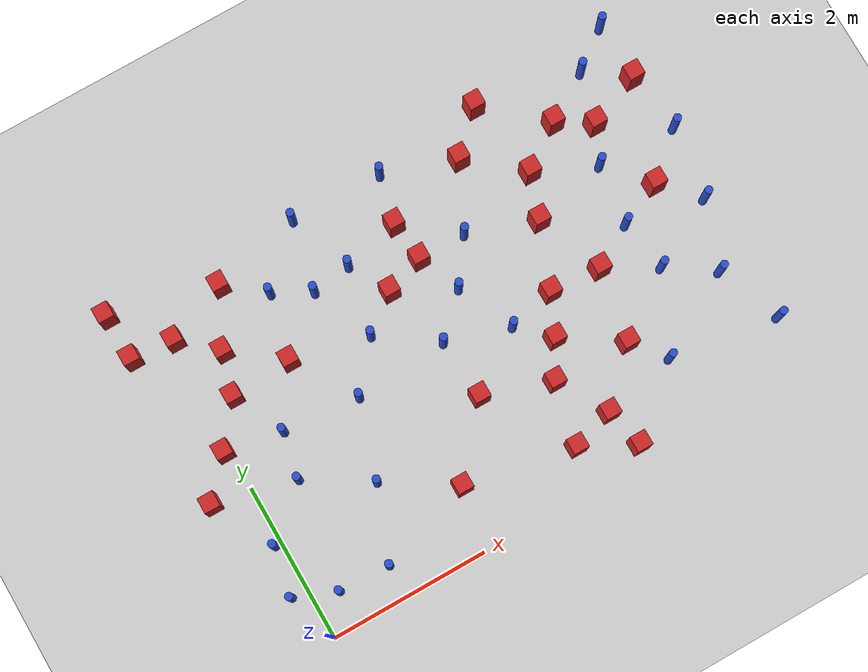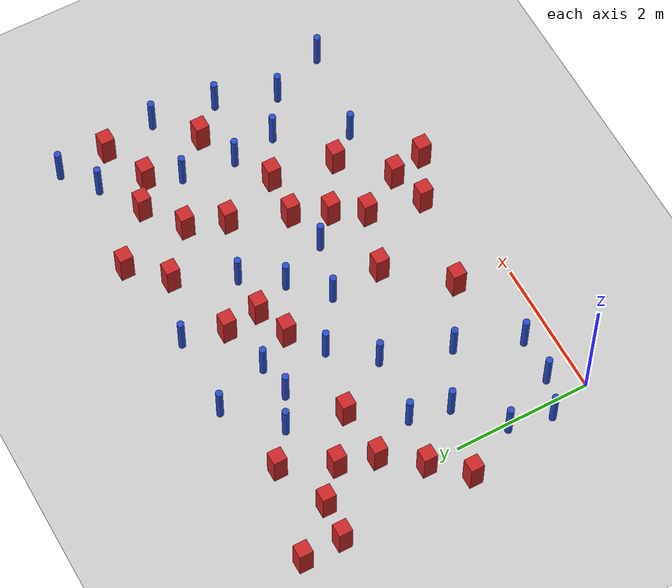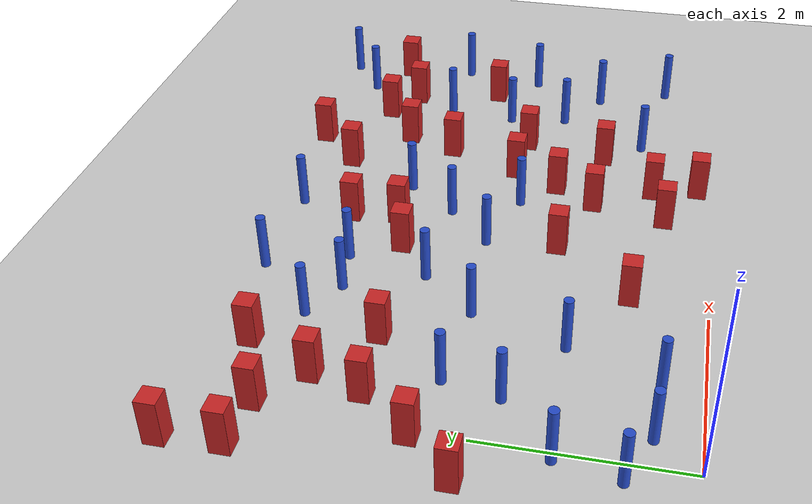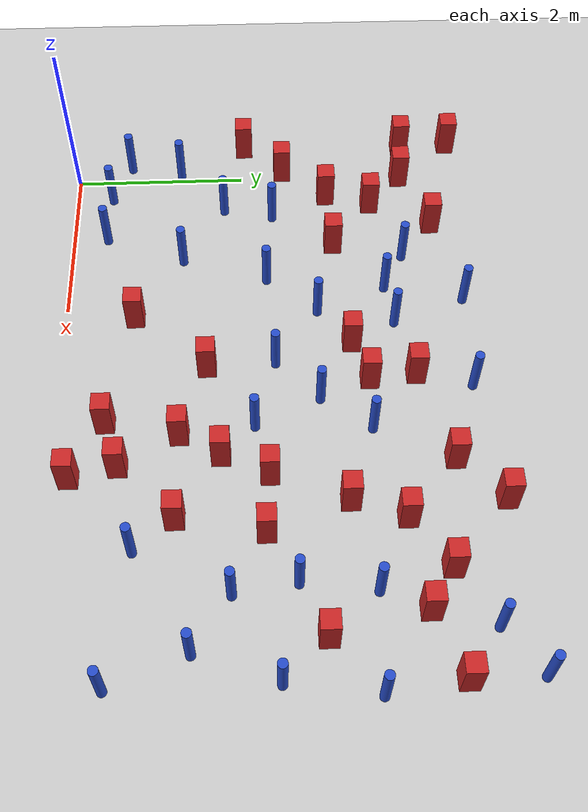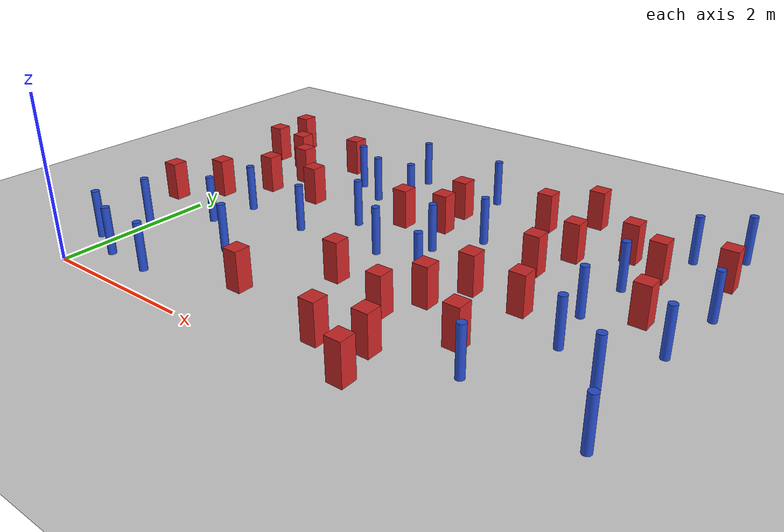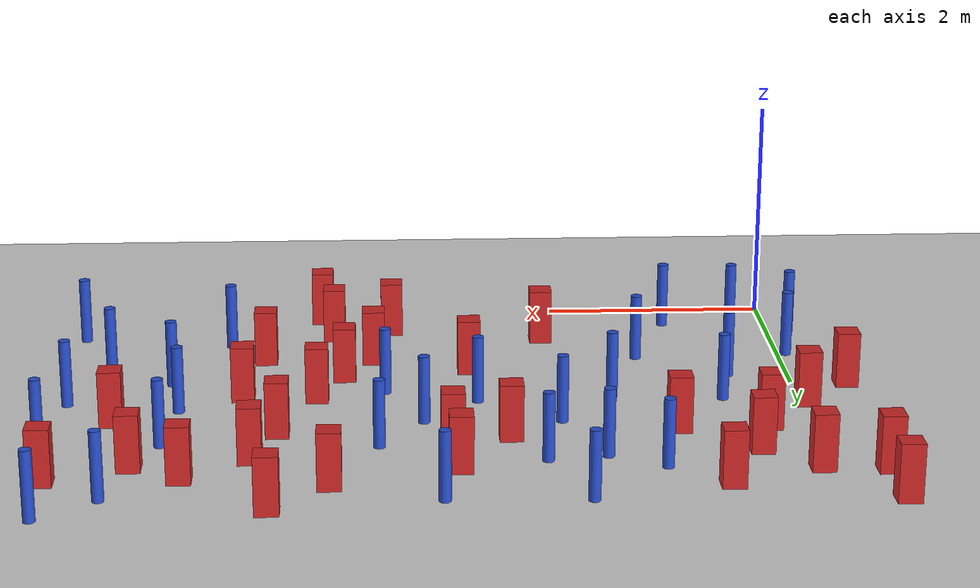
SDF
<sdf version="1.6">
 <world name="default">
  <model name="ground_plane">
   <static>1</static>
   <link name="link">
    <collision name="collision">
     <geometry><plane><normal>0 0 1</normal><size>100 100</size></plane></geometry>
     <surface><friction><ode><mu>100</mu><mu2>50</mu2></ode></friction></surface>
    </collision>
    <visual name="visual">
     <cast_shadows>0</cast_shadows>
     <geometry><plane><normal>0 0 1</normal><size>100 100</size></plane></geometry>
     <material>
      <ambient>1.0 1.0 1.0 1.0</ambient>
      <diffuse>0.8 0.8 0.8 1.0</diffuse>
      <specular>0.01 0.01 0.01 1.000000</specular>
     </material>
    </visual>
   </link>
  </model>
  <model name="pole_obstacle0">
   <static>true</static>
   <pose>3.59999986201 2.11532828441 7.38925637345e-09 -8.47170692798e-08 1.24976764939e-08 -1.74513093025e-07</pose>
   <link name="link">
    <pose>0 0 0.3 0 -0 0</pose>
    <inertial>
     <mass>1</mass>
     <inertia><ixx>0.145833</ixx><ixy>0</ixy><ixz>0</ixz><iyy>0.145833</iyy><iyz>0</iyz><izz>0.125</izz></inertia>
    </inertial>
    <collision name="collision">
     <geometry><cylinder><radius>0.05</radius><length>.6</length></cylinder></geometry>
    </collision>
    <visual name="visual">
     <geometry><cylinder><radius>0.05</radius><length>.6</length></cylinder></geometry>
     <material>
      <script><name>Gazebo/Blue</name><uri>file://media/materials/scripts/gazebo.material</uri></script>
     </material>
    </visual>
   </link>
  </model>
  <model name="pole_obstacle5">
   <static>true</static>
   <pose>1.31517857012 3.88095834125 7.38925637345e-09 -8.47170692799e-08 1.24976765053e-08 -1.74513093017e-07</pose>
   <link name="link">
    <pose>0 0 0.3 0 -0 0</pose>
    <inertial>
     <mass>1</mass>
     <inertia><ixx>0.145833</ixx><ixy>0</ixy><ixz>0</ixz><iyy>0.145833</iyy><iyz>0</iyz><izz>0.125</izz></inertia>
    </inertial>
    <collision name="collision">
     <geometry><cylinder><radius>0.05</radius><length>.6</length></cylinder></geometry>
    </collision>
    <visual name="visual">
     <geometry><cylinder><radius>0.05</radius><length>.6</length></cylinder></geometry>
     <material>
      <script><name>Gazebo/Blue</name><uri>file://media/materials/scripts/gazebo.material</uri></script>
     </material>
    </visual>
   </link>
  </model>
  <model name="pole_obstacle9">
   <static>true</static>
   <pose>1.97348872524 4.52484014197 7.38925637345e-09 -8.471706928e-08 1.24976765202e-08 -1.7451309301e-07</pose>
   <link name="link">
    <pose>0 0 0.3 0 -0 0</pose>
    <inertial>
     <mass>1</mass>
     <inertia><ixx>0.145833</ixx><ixy>0</ixy><ixz>0</ixz><iyy>0.145833</iyy><iyz>0</iyz><izz>0.125</izz></inertia>
    </inertial>
    <collision name="collision">
     <geometry><cylinder><radius>0.05</radius><length>.6</length></cylinder></geometry>
    </collision>
    <visual name="visual">
     <geometry><cylinder><radius>0.05</radius><length>.6</length></cylinder></geometry>
     <material>
      <script><name>Gazebo/Blue</name><uri>file://media/materials/scripts/gazebo.material</uri></script>
     </material>
    </visual>
   </link>
  </model>
  <model name="square_post_obstacle18">
   <static>true</static>
   <pose>2.15118313694 0.78848510376 1.91545236811e-07 -7.35059704564e-06 1.12565212e-07 2.39332434364e-05</pose>
   <link name="link">
    <pose>0 0 0.25 0 -0 0</pose>
    <inertial>
     <mass>100</mass>
     <inertia>
      <ixx>0.166667</ixx>
      <ixy>0</ixy>
      <ixz>0</ixz>
      <iyy>0.166667</iyy>
      <iyz>0</iyz>
      <izz>0.166667</izz>
     </inertia>
    </inertial>
    <collision name="collision"><geometry><box><size>.2 .2 .5</size></box></geometry></collision>
    <visual name="visual">
     <geometry><box><size>.2 .2 .5</size></box></geometry>
     <material>
      <script><name>Gazebo/Red</name><uri>file://media/materials/scripts/gazebo.material</uri></script>
     </material>
    </visual>
   </link>
  </model>
  <model name="pole_obstacle24">
   <static>true</static>
   <pose>2.27807471456 3.71019698925 7.38925637345e-09 -8.47170692798e-08 1.24976764939e-08 -1.74513093025e-07</pose>
   <link name="link">
    <pose>0 0 0.3 0 -0 0</pose>
    <inertial>
     <mass>1</mass>
     <inertia><ixx>0.145833</ixx><ixy>0</ixy><ixz>0</ixz><iyy>0.145833</iyy><iyz>0</iyz><izz>0.125</izz></inertia>
    </inertial>
    <collision name="collision">
     <geometry><cylinder><radius>0.05</radius><length>.6</length></cylinder></geometry>
    </collision>
    <visual name="visual">
     <geometry><cylinder><radius>0.05</radius><length>.6</length></cylinder></geometry>
     <material>
      <script><name>Gazebo/Blue</name><uri>file://media/materials/scripts/gazebo.material</uri></script>
     </material>
    </visual>
   </link>
  </model>
  <model name="square_post_obstacle20">
   <static>true</static>
   <pose>0.346388215493 3.02720264312 1.91545236811e-07 -7.35059704564e-06 1.12565212e-07 2.39332434364e-05</pose>
   <link name="link">
    <pose>0 0 0.25 0 -0 0</pose>
    <inertial>
     <mass>100</mass>
     <inertia>
      <ixx>0.166667</ixx>
      <ixy>0</ixy>
      <ixz>0</ixz>
      <iyy>0.166667</iyy>
      <iyz>0</iyz>
      <izz>0.166667</izz>
     </inertia>
    </inertial>
    <collision name="collision"><geometry><box><size>.2 .2 .5</size></box></geometry></collision>
    <visual name="visual">
     <geometry><box><size>.2 .2 .5</size></box></geometry>
     <material>
      <script><name>Gazebo/Red</name><uri>file://media/materials/scripts/gazebo.material</uri></script>
     </material>
    </visual>
   </link>
  </model>
  <model name="pole_obstacle30">
   <static>true</static>
   <pose>3.65956599848 3.36490128789 7.38925637345e-09 -8.47170692798e-08 1.24976764939e-08 -1.74513093025e-07</pose>
   <link name="link">
    <pose>0 0 0.3 0 -0 0</pose>
    <inertial>
     <mass>1</mass>
     <inertia><ixx>0.145833</ixx><ixy>0</ixy><ixz>0</ixz><iyy>0.145833</iyy><iyz>0</iyz><izz>0.125</izz></inertia>
    </inertial>
    <collision name="collision">
     <geometry><cylinder><radius>0.05</radius><length>.6</length></cylinder></geometry>
    </collision>
    <visual name="visual">
     <geometry><cylinder><radius>0.05</radius><length>.6</length></cylinder></geometry>
     <material>
      <script><name>Gazebo/Blue</name><uri>file://media/materials/scripts/gazebo.material</uri></script>
     </material>
    </visual>
   </link>
  </model>
  <model name="square_post_obstacle22">
   <static>true</static>
   <pose>4.71784901843 3.6338639334 1.91545236811e-07 -7.35059704564e-06 1.12565212e-07 2.39332434364e-05</pose>
   <link name="link">
    <pose>0 0 0.25 0 -0 0</pose>
    <inertial>
     <mass>100</mass>
     <inertia>
      <ixx>0.166667</ixx>
      <ixy>0</ixy>
      <ixz>0</ixz>
      <iyy>0.166667</iyy>
      <iyz>0</iyz>
      <izz>0.166667</izz>
     </inertia>
    </inertial>
    <collision name="collision"><geometry><box><size>.2 .2 .5</size></box></geometry></collision>
    <visual name="visual">
     <geometry><box><size>.2 .2 .5</size></box></geometry>
     <material>
      <script><name>Gazebo/Red</name><uri>file://media/materials/scripts/gazebo.material</uri></script>
     </material>
    </visual>
   </link>
  </model>
  <model name="pole_obstacle32">
   <static>true</static>
   <pose>2.79741233737 2.35532736677 7.38925637345e-09 -8.47170692798e-08 1.24976764939e-08 -1.74513093025e-07</pose>
   <link name="link">
    <pose>0 0 0.3 0 -0 0</pose>
    <inertial>
     <mass>1</mass>
     <inertia><ixx>0.145833</ixx><ixy>0</ixy><ixz>0</ixz><iyy>0.145833</iyy><iyz>0</iyz><izz>0.125</izz></inertia>
    </inertial>
    <collision name="collision">
     <geometry><cylinder><radius>0.05</radius><length>.6</length></cylinder></geometry>
    </collision>
    <visual name="visual">
     <geometry><cylinder><radius>0.05</radius><length>.6</length></cylinder></geometry>
     <material>
      <script><name>Gazebo/Blue</name><uri>file://media/materials/scripts/gazebo.material</uri></script>
     </material>
    </visual>
   </link>
  </model>
  <model name="square_post_obstacle28">
   <static>true</static>
   <pose>4.1805404886 0.185177053721 1.91545236811e-07 -7.35059704564e-06 1.12565212e-07 2.39332434364e-05</pose>
   <link name="link">
    <pose>0 0 0.25 0 -0 0</pose>
    <inertial>
     <mass>100</mass>
     <inertia>
      <ixx>0.166667</ixx>
      <ixy>0</ixy>
      <ixz>0</ixz>
      <iyy>0.166667</iyy>
      <iyz>0</iyz>
      <izz>0.166667</izz>
     </inertia>
    </inertial>
    <collision name="collision"><geometry><box><size>.2 .2 .5</size></box></geometry></collision>
    <visual name="visual">
     <geometry><box><size>.2 .2 .5</size></box></geometry>
     <material>
      <script><name>Gazebo/Red</name><uri>file://media/materials/scripts/gazebo.material</uri></script>
     </material>
    </visual>
   </link>
  </model>
  <model name="pole_obstacle33">
   <static>true</static>
   <pose>1.62228093729 2.28337743721 7.38925637345e-09 -8.47170692799e-08 1.24976765053e-08 -1.74513093017e-07</pose>
   <link name="link">
    <pose>0 0 0.3 0 -0 0</pose>
    <inertial>
     <mass>1</mass>
     <inertia><ixx>0.145833</ixx><ixy>0</ixy><ixz>0</ixz><iyy>0.145833</iyy><iyz>0</iyz><izz>0.125</izz></inertia>
    </inertial>
    <collision name="collision">
     <geometry><cylinder><radius>0.05</radius><length>.6</length></cylinder></geometry>
    </collision>
    <visual name="visual">
     <geometry><cylinder><radius>0.05</radius><length>.6</length></cylinder></geometry>
     <material>
      <script><name>Gazebo/Blue</name><uri>file://media/materials/scripts/gazebo.material</uri></script>
     </material>
    </visual>
   </link>
  </model>
  <model name="square_post_obstacle30">
   <static>true</static>
   <pose>2.84793238087 1.60094142056 1.91545236811e-07 -7.35059704564e-06 1.12565212e-07 2.39332434364e-05</pose>
   <link name="link">
    <pose>0 0 0.25 0 -0 0</pose>
    <inertial>
     <mass>100</mass>
     <inertia>
      <ixx>0.166667</ixx>
      <ixy>0</ixy>
      <ixz>0</ixz>
      <iyy>0.166667</iyy>
      <iyz>0</iyz>
      <izz>0.166667</izz>
     </inertia>
    </inertial>
    <collision name="collision"><geometry><box><size>.2 .2 .5</size></box></geometry></collision>
    <visual name="visual">
     <geometry><box><size>.2 .2 .5</size></box></geometry>
     <material>
      <script><name>Gazebo/Red</name><uri>file://media/materials/scripts/gazebo.material</uri></script>
     </material>
    </visual>
   </link>
  </model>
  <model name="pole_obstacle44">
   <static>true</static>
   <pose>0.961565885641 0.403878672148 7.38925637345e-09 -8.47170692799e-08 1.24976765042e-08 -1.74513093018e-07</pose>
   <link name="link">
    <pose>0 0 0.3 0 -0 0</pose>
    <inertial>
     <mass>1</mass>
     <inertia><ixx>0.145833</ixx><ixy>0</ixy><ixz>0</ixz><iyy>0.145833</iyy><iyz>0</iyz><izz>0.125</izz></inertia>
    </inertial>
    <collision name="collision">
     <geometry><cylinder><radius>0.05</radius><length>.6</length></cylinder></geometry>
    </collision>
    <visual name="visual">
     <geometry><cylinder><radius>0.05</radius><length>.6</length></cylinder></geometry>
     <material>
      <script><name>Gazebo/Blue</name><uri>file://media/materials/scripts/gazebo.material</uri></script>
     </material>
    </visual>
   </link>
  </model>
  <model name="square_post_obstacle37">
   <static>true</static>
   <pose>0.841346666904 4.26025237784 1.91545236811e-07 -7.35059704564e-06 1.12565212e-07 2.39332434364e-05</pose>
   <link name="link">
    <pose>0 0 0.25 0 -0 0</pose>
    <inertial>
     <mass>100</mass>
     <inertia>
      <ixx>0.166667</ixx>
      <ixy>0</ixy>
      <ixz>0</ixz>
      <iyy>0.166667</iyy>
      <iyz>0</iyz>
      <izz>0.166667</izz>
     </inertia>
    </inertial>
    <collision name="collision"><geometry><box><size>.2 .2 .5</size></box></geometry></collision>
    <visual name="visual">
     <geometry><box><size>.2 .2 .5</size></box></geometry>
     <material>
      <script><name>Gazebo/Red</name><uri>file://media/materials/scripts/gazebo.material</uri></script>
     </material>
    </visual>
   </link>
  </model>
  <model name="pole_obstacle49">
   <static>true</static>
   <pose>5.48275878531 1.85724465351 7.38925637345e-09 -8.471706928e-08 1.24976765134e-08 -1.74513093015e-07</pose>
   <link name="link">
    <pose>0 0 0.3 0 -0 0</pose>
    <inertial>
     <mass>1</mass>
     <inertia><ixx>0.145833</ixx><ixy>0</ixy><ixz>0</ixz><iyy>0.145833</iyy><iyz>0</iyz><izz>0.125</izz></inertia>
    </inertial>
    <collision name="collision">
     <geometry><cylinder><radius>0.05</radius><length>.6</length></cylinder></geometry>
    </collision>
    <visual name="visual">
     <geometry><cylinder><radius>0.05</radius><length>.6</length></cylinder></geometry>
     <material>
      <script><name>Gazebo/Blue</name><uri>file://media/materials/scripts/gazebo.material</uri></script>
     </material>
    </visual>
   </link>
  </model>
  <model name="pole_obstacle61">
   <static>true</static>
   <pose>6.49126966007 3.25140068982 7.38925637345e-09 -8.47170692798e-08 1.24976764937e-08 -1.74513093023e-07</pose>
   <link name="link">
    <pose>0 0 0.3 0 -0 0</pose>
    <inertial>
     <mass>1</mass>
     <inertia><ixx>0.145833</ixx><ixy>0</ixy><ixz>0</ixz><iyy>0.145833</iyy><iyz>0</iyz><izz>0.125</izz></inertia>
    </inertial>
    <collision name="collision">
     <geometry><cylinder><radius>0.05</radius><length>.6</length></cylinder></geometry>
    </collision>
    <visual name="visual">
     <geometry><cylinder><radius>0.05</radius><length>.6</length></cylinder></geometry>
     <material>
      <script><name>Gazebo/Blue</name><uri>file://media/materials/scripts/gazebo.material</uri></script>
     </material>
    </visual>
   </link>
  </model>
  <model name="pole_obstacle76">
   <static>true</static>
   <pose>0.656487274099 2.36993181887 7.38925637345e-09 -8.47170692799e-08 1.2497676509e-08 -1.74513093016e-07</pose>
   <link name="link">
    <pose>0 0 0.3 0 -0 0</pose>
    <inertial>
     <mass>1</mass>
     <inertia><ixx>0.145833</ixx><ixy>0</ixy><ixz>0</ixz><iyy>0.145833</iyy><iyz>0</iyz><izz>0.125</izz></inertia>
    </inertial>
    <collision name="collision">
     <geometry><cylinder><radius>0.05</radius><length>.6</length></cylinder></geometry>
    </collision>
    <visual name="visual">
     <geometry><cylinder><radius>0.05</radius><length>.6</length></cylinder></geometry>
     <material>
      <script><name>Gazebo/Blue</name><uri>file://media/materials/scripts/gazebo.material</uri></script>
     </material>
    </visual>
   </link>
  </model>
  <model name="pole_obstacle78">
   <static>true</static>
   <pose>6.05824664809 1.47036181266 7.38925637345e-09 -8.471706928e-08 1.24976765134e-08 -1.74513093015e-07</pose>
   <link name="link">
    <pose>0 0 0.3 0 -0 0</pose>
    <inertial>
     <mass>1</mass>
     <inertia><ixx>0.145833</ixx><ixy>0</ixy><ixz>0</ixz><iyy>0.145833</iyy><iyz>0</iyz><izz>0.125</izz></inertia>
    </inertial>
    <collision name="collision">
     <geometry><cylinder><radius>0.05</radius><length>.6</length></cylinder></geometry>
    </collision>
    <visual name="visual">
     <geometry><cylinder><radius>0.05</radius><length>.6</length></cylinder></geometry>
     <material>
      <script><name>Gazebo/Blue</name><uri>file://media/materials/scripts/gazebo.material</uri></script>
     </material>
    </visual>
   </link>
  </model>
  <model name="square_post_obstacle67">
   <static>true</static>
   <pose>3.53122868959 0.52642705448 1.91545236811e-07 -7.35059704564e-06 1.12565212e-07 2.39332434364e-05</pose>
   <link name="link">
    <pose>0 0 0.25 0 -0 0</pose>
    <inertial>
     <mass>100</mass>
     <inertia>
      <ixx>0.166667</ixx>
      <ixy>0</ixy>
      <ixz>0</ixz>
      <iyy>0.166667</iyy>
      <iyz>0</iyz>
      <izz>0.166667</izz>
     </inertia>
    </inertial>
    <collision name="collision"><geometry><box><size>.2 .2 .5</size></box></geometry></collision>
    <visual name="visual">
     <geometry><box><size>.2 .2 .5</size></box></geometry>
     <material>
      <script><name>Gazebo/Red</name><uri>file://media/materials/scripts/gazebo.material</uri></script>
     </material>
    </visual>
   </link>
  </model>
  <model name="square_post_obstacle72">
   <static>true</static>
   <pose>3.04826873284 3.37366417889 1.91545236811e-07 -7.35059704564e-06 1.12565212e-07 2.39332434364e-05</pose>
   <link name="link">
    <pose>0 0 0.25 0 -0 0</pose>
    <inertial>
     <mass>100</mass>
     <inertia>
      <ixx>0.166667</ixx>
      <ixy>0</ixy>
      <ixz>0</ixz>
      <iyy>0.166667</iyy>
      <iyz>0</iyz>
      <izz>0.166667</izz>
     </inertia>
    </inertial>
    <collision name="collision"><geometry><box><size>.2 .2 .5</size></box></geometry></collision>
    <visual name="visual">
     <geometry><box><size>.2 .2 .5</size></box></geometry>
     <material>
      <script><name>Gazebo/Red</name><uri>file://media/materials/scripts/gazebo.material</uri></script>
     </material>
    </visual>
   </link>
  </model>
  <model name="pole_obstacle85">
   <static>true</static>
   <pose>5.48218793761 3.28763165612 7.38925637345e-09 -8.47170692798e-08 1.24976764937e-08 -1.74513093023e-07</pose>
   <link name="link">
    <pose>0 0 0.3 0 -0 0</pose>
    <inertial>
     <mass>1</mass>
     <inertia><ixx>0.145833</ixx><ixy>0</ixy><ixz>0</ixz><iyy>0.145833</iyy><iyz>0</iyz><izz>0.125</izz></inertia>
    </inertial>
    <collision name="collision">
     <geometry><cylinder><radius>0.05</radius><length>.6</length></cylinder></geometry>
    </collision>
    <visual name="visual">
     <geometry><cylinder><radius>0.05</radius><length>.6</length></cylinder></geometry>
     <material>
      <script><name>Gazebo/Blue</name><uri>file://media/materials/scripts/gazebo.material</uri></script>
     </material>
    </visual>
   </link>
  </model>
  <model name="pole_obstacle90">
   <static>true</static>
   <pose>5.38153553141 2.51307991077 7.38925637345e-09 -8.47170692798e-08 1.24976764937e-08 -1.74513093023e-07</pose>
   <link name="link">
    <pose>0 0 0.3 0 -0 0</pose>
    <inertial>
     <mass>1</mass>
     <inertia><ixx>0.145833</ixx><ixy>0</ixy><ixz>0</ixz><iyy>0.145833</iyy><iyz>0</iyz><izz>0.125</izz></inertia>
    </inertial>
    <collision name="collision">
     <geometry><cylinder><radius>0.05</radius><length>.6</length></cylinder></geometry>
    </collision>
    <visual name="visual">
     <geometry><cylinder><radius>0.05</radius><length>.6</length></cylinder></geometry>
     <material>
      <script><name>Gazebo/Blue</name><uri>file://media/materials/scripts/gazebo.material</uri></script>
     </material>
    </visual>
   </link>
  </model>
  <model name="square_post_obstacle82">
   <static>true</static>
   <pose>5.26537857415 4.02279214426 1.91545236811e-07 -7.35059704564e-06 1.12565212e-07 2.39332434364e-05</pose>
   <link name="link">
    <pose>0 0 0.25 0 -0 0</pose>
    <inertial>
     <mass>100</mass>
     <inertia>
      <ixx>0.166667</ixx>
      <ixy>0</ixy>
      <ixz>0</ixz>
      <iyy>0.166667</iyy>
      <iyz>0</iyz>
      <izz>0.166667</izz>
     </inertia>
    </inertial>
    <collision name="collision"><geometry><box><size>.2 .2 .5</size></box></geometry></collision>
    <visual name="visual">
     <geometry><box><size>.2 .2 .5</size></box></geometry>
     <material>
      <script><name>Gazebo/Red</name><uri>file://media/materials/scripts/gazebo.material</uri></script>
     </material>
    </visual>
   </link>
  </model>
  <model name="pole_obstacle92">
   <static>true</static>
   <pose>2.09827740539 2.84926225565 7.38925637345e-09 -8.47170692798e-08 1.24976764939e-08 -1.74513093025e-07</pose>
   <link name="link">
    <pose>0 0 0.3 0 -0 0</pose>
    <inertial>
     <mass>1</mass>
     <inertia><ixx>0.145833</ixx><ixy>0</ixy><ixz>0</ixz><iyy>0.145833</iyy><iyz>0</iyz><izz>0.125</izz></inertia>
    </inertial>
    <collision name="collision">
     <geometry><cylinder><radius>0.05</radius><length>.6</length></cylinder></geometry>
    </collision>
    <visual name="visual">
     <geometry><cylinder><radius>0.05</radius><length>.6</length></cylinder></geometry>
     <material>
      <script><name>Gazebo/Blue</name><uri>file://media/materials/scripts/gazebo.material</uri></script>
     </material>
    </visual>
   </link>
  </model>
  <model name="square_post_obstacle88">
   <static>true</static>
   <pose>1.12422841568 3.07450086924 1.91545236811e-07 -7.35059704564e-06 1.12565212e-07 2.39332434364e-05</pose>
   <link name="link">
    <pose>0 0 0.25 0 -0 0</pose>
    <inertial>
     <mass>100</mass>
     <inertia>
      <ixx>0.166667</ixx>
      <ixy>0</ixy>
      <ixz>0</ixz>
      <iyy>0.166667</iyy>
      <iyz>0</iyz>
      <izz>0.166667</izz>
     </inertia>
    </inertial>
    <collision name="collision"><geometry><box><size>.2 .2 .5</size></box></geometry></collision>
    <visual name="visual">
     <geometry><box><size>.2 .2 .5</size></box></geometry>
     <material>
      <script><name>Gazebo/Red</name><uri>file://media/materials/scripts/gazebo.material</uri></script>
     </material>
    </visual>
   </link>
  </model>
  <model name="pole_obstacle96">
   <static>true</static>
   <pose>0.53340064516 1.79403683901 7.38925637345e-09 -8.47170692798e-08 1.24976764963e-08 -1.74513093022e-07</pose>
   <link name="link">
    <pose>0 0 0.3 0 -0 0</pose>
    <inertial>
     <mass>1</mass>
     <inertia><ixx>0.145833</ixx><ixy>0</ixy><ixz>0</ixz><iyy>0.145833</iyy><iyz>0</iyz><izz>0.125</izz></inertia>
    </inertial>
    <collision name="collision">
     <geometry><cylinder><radius>0.05</radius><length>.6</length></cylinder></geometry>
    </collision>
    <visual name="visual">
     <geometry><cylinder><radius>0.05</radius><length>.6</length></cylinder></geometry>
     <material>
      <script><name>Gazebo/Blue</name><uri>file://media/materials/scripts/gazebo.material</uri></script>
     </material>
    </visual>
   </link>
  </model>
  <model name="square_post_obstacle89">
   <static>true</static>
   <pose>4.53890463299 4.66056689381 1.91545236811e-07 -7.35059704564e-06 1.12565212e-07 2.39332434364e-05</pose>
   <link name="link">
    <pose>0 0 0.25 0 -0 0</pose>
    <inertial>
     <mass>100</mass>
     <inertia>
      <ixx>0.166667</ixx>
      <ixy>0</ixy>
      <ixz>0</ixz>
      <iyy>0.166667</iyy>
      <iyz>0</iyz>
      <izz>0.166667</izz>
     </inertia>
    </inertial>
    <collision name="collision"><geometry><box><size>.2 .2 .5</size></box></geometry></collision>
    <visual name="visual">
     <geometry><box><size>.2 .2 .5</size></box></geometry>
     <material>
      <script><name>Gazebo/Red</name><uri>file://media/materials/scripts/gazebo.material</uri></script>
     </material>
    </visual>
   </link>
  </model>
  <model name="pole_obstacle103">
   <static>true</static>
   <pose>0.318253601087 0.432526465357 7.38925637345e-09 -8.471706928e-08 1.24976765138e-08 -1.74513093013e-07</pose>
   <link name="link">
    <pose>0 0 0.3 0 -0 0</pose>
    <inertial>
     <mass>1</mass>
     <inertia><ixx>0.145833</ixx><ixy>0</ixy><ixz>0</ixz><iyy>0.145833</iyy><iyz>0</iyz><izz>0.125</izz></inertia>
    </inertial>
    <collision name="collision">
     <geometry><cylinder><radius>0.05</radius><length>.6</length></cylinder></geometry>
    </collision>
    <visual name="visual">
     <geometry><cylinder><radius>0.05</radius><length>.6</length></cylinder></geometry>
     <material>
      <script><name>Gazebo/Blue</name><uri>file://media/materials/scripts/gazebo.material</uri></script>
     </material>
    </visual>
   </link>
  </model>
  <model name="square_post_obstacle99">
   <static>true</static>
   <pose>6.36875139085 4.03530906781 1.91545236811e-07 -7.35059704564e-06 1.12565212e-07 2.39332434364e-05</pose>
   <link name="link">
    <pose>0 0 0.25 0 -0 0</pose>
    <inertial>
     <mass>100</mass>
     <inertia>
      <ixx>0.166667</ixx>
      <ixy>0</ixy>
      <ixz>0</ixz>
      <iyy>0.166667</iyy>
      <iyz>0</iyz>
      <izz>0.166667</izz>
     </inertia>
    </inertial>
    <collision name="collision"><geometry><box><size>.2 .2 .5</size></box></geometry></collision>
    <visual name="visual">
     <geometry><box><size>.2 .2 .5</size></box></geometry>
     <material>
      <script><name>Gazebo/Red</name><uri>file://media/materials/scripts/gazebo.material</uri></script>
     </material>
    </visual>
   </link>
  </model>
  <model name="square_post_obstacle111">
   <static>true</static>
   <pose>4.67502008794 1.2914887885 1.91545236811e-07 -7.35059704564e-06 1.12565212e-07 2.39332434364e-05</pose>
   <link name="link">
    <pose>0 0 0.25 0 -0 0</pose>
    <inertial>
     <mass>100</mass>
     <inertia>
      <ixx>0.166667</ixx>
      <ixy>0</ixy>
      <ixz>0</ixz>
      <iyy>0.166667</iyy>
      <iyz>0</iyz>
      <izz>0.166667</izz>
     </inertia>
    </inertial>
    <collision name="collision"><geometry><box><size>.2 .2 .5</size></box></geometry></collision>
    <visual name="visual">
     <geometry><box><size>.2 .2 .5</size></box></geometry>
     <material>
      <script><name>Gazebo/Red</name><uri>file://media/materials/scripts/gazebo.material</uri></script>
     </material>
    </visual>
   </link>
  </model>
  <model name="square_post_obstacle112">
   <static>true</static>
   <pose>5.9299140647 2.77203124467 1.91545236811e-07 -7.35059704564e-06 1.12565212e-07 2.39332434364e-05</pose>
   <link name="link">
    <pose>0 0 0.25 0 -0 0</pose>
    <inertial>
     <mass>100</mass>
     <inertia>
      <ixx>0.166667</ixx>
      <ixy>0</ixy>
      <ixz>0</ixz>
      <iyy>0.166667</iyy>
      <iyz>0</iyz>
      <izz>0.166667</izz>
     </inertia>
    </inertial>
    <collision name="collision"><geometry><box><size>.2 .2 .5</size></box></geometry></collision>
    <visual name="visual">
     <geometry><box><size>.2 .2 .5</size></box></geometry>
     <material>
      <script><name>Gazebo/Red</name><uri>file://media/materials/scripts/gazebo.material</uri></script>
     </material>
    </visual>
   </link>
  </model>
  <model name="square_post_obstacle113">
   <static>true</static>
   <pose>4.06424156252 0.684452052929 1.91545236811e-07 -7.35059704564e-06 1.12565212e-07 2.39332434364e-05</pose>
   <link name="link">
    <pose>0 0 0.25 0 -0 0</pose>
    <inertial>
     <mass>100</mass>
     <inertia>
      <ixx>0.166667</ixx>
      <ixy>0</ixy>
      <ixz>0</ixz>
      <iyy>0.166667</iyy>
      <iyz>0</iyz>
      <izz>0.166667</izz>
     </inertia>
    </inertial>
    <collision name="collision"><geometry><box><size>.2 .2 .5</size></box></geometry></collision>
    <visual name="visual">
     <geometry><box><size>.2 .2 .5</size></box></geometry>
     <material>
      <script><name>Gazebo/Red</name><uri>file://media/materials/scripts/gazebo.material</uri></script>
     </material>
    </visual>
   </link>
  </model>
  <model name="pole_obstacle119">
   <static>true</static>
   <pose>-0.0809111819096 1.26084774077 7.38925637345e-09 -8.47170692799e-08 1.24976765008e-08 -1.7451309302e-07</pose>
   <link name="link">
    <pose>0 0 0.3 0 -0 0</pose>
    <inertial>
     <mass>1</mass>
     <inertia><ixx>0.145833</ixx><ixy>0</ixy><ixz>0</ixz><iyy>0.145833</iyy><iyz>0</iyz><izz>0.125</izz></inertia>
    </inertial>
    <collision name="collision">
     <geometry><cylinder><radius>0.05</radius><length>.6</length></cylinder></geometry>
    </collision>
    <visual name="visual">
     <geometry><cylinder><radius>0.05</radius><length>.6</length></cylinder></geometry>
     <material>
      <script><name>Gazebo/Blue</name><uri>file://media/materials/scripts/gazebo.material</uri></script>
     </material>
    </visual>
   </link>
  </model>
  <model name="square_post_obstacle124">
   <static>true</static>
   <pose>-0.49170925498 4.59505623749 1.91545236811e-07 -7.35059704564e-06 1.12565212e-07 2.39332434364e-05</pose>
   <link name="link">
    <pose>0 0 0.25 0 -0 0</pose>
    <inertial>
     <mass>100</mass>
     <inertia>
      <ixx>0.166667</ixx>
      <ixy>0</ixy>
      <ixz>0</ixz>
      <iyy>0.166667</iyy>
      <iyz>0</iyz>
      <izz>0.166667</izz>
     </inertia>
    </inertial>
    <collision name="collision"><geometry><box><size>.2 .2 .5</size></box></geometry></collision>
    <visual name="visual">
     <geometry><box><size>.2 .2 .5</size></box></geometry>
     <material>
      <script><name>Gazebo/Red</name><uri>file://media/materials/scripts/gazebo.material</uri></script>
     </material>
    </visual>
   </link>
  </model>
  <model name="pole_obstacle130">
   <static>true</static>
   <pose>6.35917317634 4.76646849909 7.38925637345e-09 -8.47170692796e-08 1.24976764786e-08 -1.74513093032e-07</pose>
   <link name="link">
    <pose>0 0 0.3 0 -0 0</pose>
    <inertial>
     <mass>1</mass>
     <inertia><ixx>0.145833</ixx><ixy>0</ixy><ixz>0</ixz><iyy>0.145833</iyy><iyz>0</iyz><izz>0.125</izz></inertia>
    </inertial>
    <collision name="collision">
     <geometry><cylinder><radius>0.05</radius><length>.6</length></cylinder></geometry>
    </collision>
    <visual name="visual">
     <geometry><cylinder><radius>0.05</radius><length>.6</length></cylinder></geometry>
     <material>
      <script><name>Gazebo/Blue</name><uri>file://media/materials/scripts/gazebo.material</uri></script>
     </material>
    </visual>
   </link>
  </model>
  <model name="square_post_obstacle131">
   <static>true</static>
   <pose>-0.482946054506 2.04429324936 1.91545236811e-07 -7.35059704564e-06 1.12565212e-07 2.39332434364e-05</pose>
   <link name="link">
    <pose>0 0 0.25 0 -0 0</pose>
    <inertial>
     <mass>100</mass>
     <inertia>
      <ixx>0.166667</ixx>
      <ixy>0</ixy>
      <ixz>0</ixz>
      <iyy>0.166667</iyy>
      <iyz>0</iyz>
      <izz>0.166667</izz>
     </inertia>
    </inertial>
    <collision name="collision"><geometry><box><size>.2 .2 .5</size></box></geometry></collision>
    <visual name="visual">
     <geometry><box><size>.2 .2 .5</size></box></geometry>
     <material>
      <script><name>Gazebo/Red</name><uri>file://media/materials/scripts/gazebo.material</uri></script>
     </material>
    </visual>
   </link>
  </model>
  <model name="square_post_obstacle135">
   <static>true</static>
   <pose>4.19611704474 2.26062491517 1.91545236811e-07 -7.35059704564e-06 1.12565212e-07 2.39332434364e-05</pose>
   <link name="link">
    <pose>0 0 0.25 0 -0 0</pose>
    <inertial>
     <mass>100</mass>
     <inertia>
      <ixx>0.166667</ixx>
      <ixy>0</ixy>
      <ixz>0</ixz>
      <iyy>0.166667</iyy>
      <iyz>0</iyz>
      <izz>0.166667</izz>
     </inertia>
    </inertial>
    <collision name="collision"><geometry><box><size>.2 .2 .5</size></box></geometry></collision>
    <visual name="visual">
     <geometry><box><size>.2 .2 .5</size></box></geometry>
     <material>
      <script><name>Gazebo/Red</name><uri>file://media/materials/scripts/gazebo.material</uri></script>
     </material>
    </visual>
   </link>
  </model>
  <model name="square_post_obstacle138">
   <static>true</static>
   <pose>-0.472756069828 4.00516166778 1.91545236811e-07 -7.35059704564e-06 1.12565212e-07 2.39332434364e-05</pose>
   <link name="link">
    <pose>0 0 0.25 0 -0 0</pose>
    <inertial>
     <mass>100</mass>
     <inertia>
      <ixx>0.166667</ixx>
      <ixy>0</ixy>
      <ixz>0</ixz>
      <iyy>0.166667</iyy>
      <iyz>0</iyz>
      <izz>0.166667</izz>
     </inertia>
    </inertial>
    <collision name="collision"><geometry><box><size>.2 .2 .5</size></box></geometry></collision>
    <visual name="visual">
     <geometry><box><size>.2 .2 .5</size></box></geometry>
     <material>
      <script><name>Gazebo/Red</name><uri>file://media/materials/scripts/gazebo.material</uri></script>
     </material>
    </visual>
   </link>
  </model>
  <model name="square_post_obstacle145">
   <static>true</static>
   <pose>0.498264867244 3.55453353557 1.91545236811e-07 -7.35059704564e-06 1.12565212e-07 2.39332434364e-05</pose>
   <link name="link">
    <pose>0 0 0.25 0 -0 0</pose>
    <inertial>
     <mass>100</mass>
     <inertia>
      <ixx>0.166667</ixx>
      <ixy>0</ixy>
      <ixz>0</ixz>
      <iyy>0.166667</iyy>
      <iyz>0</iyz>
      <izz>0.166667</izz>
     </inertia>
    </inertial>
    <collision name="collision"><geometry><box><size>.2 .2 .5</size></box></geometry></collision>
    <visual name="visual">
     <geometry><box><size>.2 .2 .5</size></box></geometry>
     <material>
      <script><name>Gazebo/Red</name><uri>file://media/materials/scripts/gazebo.material</uri></script>
     </material>
    </visual>
   </link>
  </model>
  <model name="square_post_obstacle148">
   <static>true</static>
   <pose>2.55478781761 3.206715737 1.91545236811e-07 -7.35059704564e-06 1.12565212e-07 2.39332434364e-05</pose>
   <link name="link">
    <pose>0 0 0.25 0 -0 0</pose>
    <inertial>
     <mass>100</mass>
     <inertia>
      <ixx>0.166667</ixx>
      <ixy>0</ixy>
      <ixz>0</ixz>
      <iyy>0.166667</iyy>
      <iyz>0</iyz>
      <izz>0.166667</izz>
     </inertia>
    </inertial>
    <collision name="collision"><geometry><box><size>.2 .2 .5</size></box></geometry></collision>
    <visual name="visual">
     <geometry><box><size>.2 .2 .5</size></box></geometry>
     <material>
      <script><name>Gazebo/Red</name><uri>file://media/materials/scripts/gazebo.material</uri></script>
     </material>
    </visual>
   </link>
  </model>
  <model name="square_post_obstacle151">
   <static>true</static>
   <pose>4.06101400767 4.190572614 1.91545236811e-07 -7.35059704564e-06 1.12565212e-07 2.39332434364e-05</pose>
   <link name="link">
    <pose>0 0 0.25 0 -0 0</pose>
    <inertial>
     <mass>100</mass>
     <inertia>
      <ixx>0.166667</ixx>
      <ixy>0</ixy>
      <ixz>0</ixz>
      <iyy>0.166667</iyy>
      <iyz>0</iyz>
      <izz>0.166667</izz>
     </inertia>
    </inertial>
    <collision name="collision"><geometry><box><size>.2 .2 .5</size></box></geometry></collision>
    <visual name="visual">
     <geometry><box><size>.2 .2 .5</size></box></geometry>
     <material>
      <script><name>Gazebo/Red</name><uri>file://media/materials/scripts/gazebo.material</uri></script>
     </material>
    </visual>
   </link>
  </model>
  <model name="square_post_obstacle161">
   <static>true</static>
   <pose>0.0657970432189 3.9509866889 1.91545236811e-07 -7.35059704564e-06 1.12565212e-07 2.39332434364e-05</pose>
   <link name="link">
    <pose>0 0 0.25 0 -0 0</pose>
    <inertial>
     <mass>100</mass>
     <inertia>
      <ixx>0.166667</ixx>
      <ixy>0</ixy>
      <ixz>0</ixz>
      <iyy>0.166667</iyy>
      <iyz>0</iyz>
      <izz>0.166667</izz>
     </inertia>
    </inertial>
    <collision name="collision"><geometry><box><size>.2 .2 .5</size></box></geometry></collision>
    <visual name="visual">
     <geometry><box><size>.2 .2 .5</size></box></geometry>
     <material>
      <script><name>Gazebo/Red</name><uri>file://media/materials/scripts/gazebo.material</uri></script>
     </material>
    </visual>
   </link>
  </model>
  <model name="square_post_obstacle164">
   <static>true</static>
   <pose>-0.0628480656485 2.50838283888 1.91545236811e-07 -7.35059704564e-06 1.12565212e-07 2.39332434364e-05</pose>
   <link name="link">
    <pose>0 0 0.25 0 -0 0</pose>
    <inertial>
     <mass>100</mass>
     <inertia>
      <ixx>0.166667</ixx>
      <ixy>0</ixy>
      <ixz>0</ixz>
      <iyy>0.166667</iyy>
      <iyz>0</iyz>
      <izz>0.166667</izz>
     </inertia>
    </inertial>
    <collision name="collision"><geometry><box><size>.2 .2 .5</size></box></geometry></collision>
    <visual name="visual">
     <geometry><box><size>.2 .2 .5</size></box></geometry>
     <material>
      <script><name>Gazebo/Red</name><uri>file://media/materials/scripts/gazebo.material</uri></script>
     </material>
    </visual>
   </link>
  </model>
  <model name="square_post_obstacle171">
   <static>true</static>
   <pose>4.84104057472 2.21325352771 1.91545236811e-07 -7.35059704564e-06 1.12565212e-07 2.39332434364e-05</pose>
   <link name="link">
    <pose>0 0 0.25 0 -0 0</pose>
    <inertial>
     <mass>100</mass>
     <inertia>
      <ixx>0.166667</ixx>
      <ixy>0</ixy>
      <ixz>0</ixz>
      <iyy>0.166667</iyy>
      <iyz>0</iyz>
      <izz>0.166667</izz>
     </inertia>
    </inertial>
    <collision name="collision"><geometry><box><size>.2 .2 .5</size></box></geometry></collision>
    <visual name="visual">
     <geometry><box><size>.2 .2 .5</size></box></geometry>
     <material>
      <script><name>Gazebo/Red</name><uri>file://media/materials/scripts/gazebo.material</uri></script>
     </material>
    </visual>
   </link>
  </model>
  <model name="square_post_obstacle172">
   <static>true</static>
   <pose>4.51428533067 3.07023292223 1.91545236811e-07 -7.35059704564e-06 1.12565212e-07 2.39332434364e-05</pose>
   <link name="link">
    <pose>0 0 0.25 0 -0 0</pose>
    <inertial>
     <mass>100</mass>
     <inertia>
      <ixx>0.166667</ixx>
      <ixy>0</ixy>
      <ixz>0</ixz>
      <iyy>0.166667</iyy>
      <iyz>0</iyz>
      <izz>0.166667</izz>
     </inertia>
    </inertial>
    <collision name="collision"><geometry><box><size>.2 .2 .5</size></box></geometry></collision>
    <visual name="visual">
     <geometry><box><size>.2 .2 .5</size></box></geometry>
     <material>
      <script><name>Gazebo/Red</name><uri>file://media/materials/scripts/gazebo.material</uri></script>
     </material>
    </visual>
   </link>
  </model>
  <model name="pole_obstacle176">
   <static>true</static>
   <pose>1.3123582279 1.31242381879 7.38925637345e-09 -8.471706928e-08 1.24976765079e-08 -1.74513093017e-07</pose>
   <link name="link">
    <pose>0 0 0.3 0 -0 0</pose>
    <inertial>
     <mass>1</mass>
     <inertia><ixx>0.145833</ixx><ixy>0</ixy><ixz>0</ixz><iyy>0.145833</iyy><iyz>0</iyz><izz>0.125</izz></inertia>
    </inertial>
    <collision name="collision">
     <geometry><cylinder><radius>0.05</radius><length>.6</length></cylinder></geometry>
    </collision>
    <visual name="visual">
     <geometry><cylinder><radius>0.05</radius><length>.6</length></cylinder></geometry>
     <material>
      <script><name>Gazebo/Blue</name><uri>file://media/materials/scripts/gazebo.material</uri></script>
     </material>
    </visual>
   </link>
  </model>
  <model name="square_post_obstacle174">
   <static>true</static>
   <pose>3.70146272227 1.31571319295 1.91545236811e-07 -7.35059704564e-06 1.12565212e-07 2.39332434364e-05</pose>
   <link name="link">
    <pose>0 0 0.25 0 -0 0</pose>
    <inertial>
     <mass>100</mass>
     <inertia>
      <ixx>0.166667</ixx>
      <ixy>0</ixy>
      <ixz>0</ixz>
      <iyy>0.166667</iyy>
      <iyz>0</iyz>
      <izz>0.166667</izz>
     </inertia>
    </inertial>
    <collision name="collision"><geometry><box><size>.2 .2 .5</size></box></geometry></collision>
    <visual name="visual">
     <geometry><box><size>.2 .2 .5</size></box></geometry>
     <material>
      <script><name>Gazebo/Red</name><uri>file://media/materials/scripts/gazebo.material</uri></script>
     </material>
    </visual>
   </link>
  </model>
  <model name="pole_obstacle180">
   <static>true</static>
   <pose>6.35975838887 2.32143610529 7.38925637345e-09 -8.47170692798e-08 1.24976764937e-08 -1.74513093023e-07</pose>
   <link name="link">
    <pose>0 0 0.3 0 -0 0</pose>
    <inertial>
     <mass>1</mass>
     <inertia><ixx>0.145833</ixx><ixy>0</ixy><ixz>0</ixz><iyy>0.145833</iyy><iyz>0</iyz><izz>0.125</izz></inertia>
    </inertial>
    <collision name="collision">
     <geometry><cylinder><radius>0.05</radius><length>.6</length></cylinder></geometry>
    </collision>
    <visual name="visual">
     <geometry><cylinder><radius>0.05</radius><length>.6</length></cylinder></geometry>
     <material>
      <script><name>Gazebo/Blue</name><uri>file://media/materials/scripts/gazebo.material</uri></script>
     </material>
    </visual>
   </link>
  </model>
  <model name="pole_obstacle183">
   <static>true</static>
   <pose>3.14796281131 4.49423886293 7.38925637345e-09 -8.47170692798e-08 1.24976765033e-08 -1.74513093019e-07</pose>
   <link name="link">
    <pose>0 0 0.3 0 -0 0</pose>
    <inertial>
     <mass>1</mass>
     <inertia><ixx>0.145833</ixx><ixy>0</ixy><ixz>0</ixz><iyy>0.145833</iyy><iyz>0</iyz><izz>0.125</izz></inertia>
    </inertial>
    <collision name="collision">
     <geometry><cylinder><radius>0.05</radius><length>.6</length></cylinder></geometry>
    </collision>
    <visual name="visual">
     <geometry><cylinder><radius>0.05</radius><length>.6</length></cylinder></geometry>
     <material>
      <script><name>Gazebo/Blue</name><uri>file://media/materials/scripts/gazebo.material</uri></script>
     </material>
    </visual>
   </link>
  </model>
  <model name="pole_obstacle185">
   <static>true</static>
   <pose>3.27504268163 2.82676812337 7.38925637345e-09 -8.47170692798e-08 1.24976764939e-08 -1.74513093025e-07</pose>
   <link name="link">
    <pose>0 0 0.3 0 -0 0</pose>
    <inertial>
     <mass>1</mass>
     <inertia><ixx>0.145833</ixx><ixy>0</ixy><ixz>0</ixz><iyy>0.145833</iyy><iyz>0</iyz><izz>0.125</izz></inertia>
    </inertial>
    <collision name="collision">
     <geometry><cylinder><radius>0.05</radius><length>.6</length></cylinder></geometry>
    </collision>
    <visual name="visual">
     <geometry><cylinder><radius>0.05</radius><length>.6</length></cylinder></geometry>
     <material>
      <script><name>Gazebo/Blue</name><uri>file://media/materials/scripts/gazebo.material</uri></script>
     </material>
    </visual>
   </link>
  </model>
  <model name="square_post_obstacle191">
   <static>true</static>
   <pose>2.99807168809 3.88161149771 1.91545236811e-07 -7.35059704564e-06 1.12565212e-07 2.39332434364e-05</pose>
   <link name="link">
    <pose>0 0 0.25 0 -0 0</pose>
    <inertial>
     <mass>100</mass>
     <inertia>
      <ixx>0.166667</ixx>
      <ixy>0</ixy>
      <ixz>0</ixz>
      <iyy>0.166667</iyy>
      <iyz>0</iyz>
      <izz>0.166667</izz>
     </inertia>
    </inertial>
    <collision name="collision"><geometry><box><size>.2 .2 .5</size></box></geometry></collision>
    <visual name="visual">
     <geometry><box><size>.2 .2 .5</size></box></geometry>
     <material>
      <script><name>Gazebo/Red</name><uri>file://media/materials/scripts/gazebo.material</uri></script>
     </material>
    </visual>
   </link>
  </model>
  <model name="square_post_obstacle192">
   <static>true</static>
   <pose>5.69081778749 3.75927302359 1.91545236811e-07 -7.35059704564e-06 1.12565212e-07 2.39332434364e-05</pose>
   <link name="link">
    <pose>0 0 0.25 0 -0 0</pose>
    <inertial>
     <mass>100</mass>
     <inertia>
      <ixx>0.166667</ixx>
      <ixy>0</ixy>
      <ixz>0</ixz>
      <iyy>0.166667</iyy>
      <iyz>0</iyz>
      <izz>0.166667</izz>
     </inertia>
    </inertial>
    <collision name="collision"><geometry><box><size>.2 .2 .5</size></box></geometry></collision>
    <visual name="visual">
     <geometry><box><size>.2 .2 .5</size></box></geometry>
     <material>
      <script><name>Gazebo/Red</name><uri>file://media/materials/scripts/gazebo.material</uri></script>
     </material>
    </visual>
   </link>
  </model>
  <model name="square_post_obstacle198">
   <static>true</static>
   <pose>3.9608738651 1.75530915195 1.91545236811e-07 -7.35059704564e-06 1.12565212e-07 2.39332434364e-05</pose>
   <link name="link">
    <pose>0 0 0.25 0 -0 0</pose>
    <inertial>
     <mass>100</mass>
     <inertia>
      <ixx>0.166667</ixx>
      <ixy>0</ixy>
      <ixz>0</ixz>
      <iyy>0.166667</iyy>
      <iyz>0</iyz>
      <izz>0.166667</izz>
     </inertia>
    </inertial>
    <collision name="collision"><geometry><box><size>.2 .2 .5</size></box></geometry></collision>
    <visual name="visual">
     <geometry><box><size>.2 .2 .5</size></box></geometry>
     <material>
      <script><name>Gazebo/Red</name><uri>file://media/materials/scripts/gazebo.material</uri></script>
     </material>
    </visual>
   </link>
  </model>
  <model name="pole_obstacle199">
   <static>true</static>
   <pose>5.00878769422 0.872648468466 7.38925637345e-09 -8.47170692799e-08 1.24976765038e-08 -1.74513093018e-07</pose>
   <link name="link">
    <pose>0 0 0.3 0 -0 0</pose>
    <inertial>
     <mass>1</mass>
     <inertia><ixx>0.145833</ixx><ixy>0</ixy><ixz>0</ixz><iyy>0.145833</iyy><iyz>0</iyz><izz>0.125</izz></inertia>
    </inertial>
    <collision name="collision">
     <geometry><cylinder><radius>0.05</radius><length>.6</length></cylinder></geometry>
    </collision>
    <visual name="visual">
     <geometry><cylinder><radius>0.05</radius><length>.6</length></cylinder></geometry>
     <material>
      <script><name>Gazebo/Blue</name><uri>file://media/materials/scripts/gazebo.material</uri></script>
     </material>
    </visual>
   </link>
  </model>
  <model name="pole_obstacle201">
   <static>true</static>
   <pose>5.87263822366 4.39801201218 7.38925637345e-09 -8.47170692796e-08 1.24976764786e-08 -1.74513093032e-07</pose>
   <link name="link">
    <pose>0 0 0.3 0 -0 0</pose>
    <inertial>
     <mass>1</mass>
     <inertia><ixx>0.145833</ixx><ixy>0</ixy><ixz>0</ixz><iyy>0.145833</iyy><iyz>0</iyz><izz>0.125</izz></inertia>
    </inertial>
    <collision name="collision">
     <geometry><cylinder><radius>0.05</radius><length>.6</length></cylinder></geometry>
    </collision>
    <visual name="visual">
     <geometry><cylinder><radius>0.05</radius><length>.6</length></cylinder></geometry>
     <material>
      <script><name>Gazebo/Blue</name><uri>file://media/materials/scripts/gazebo.material</uri></script>
     </material>
    </visual>
   </link>
  </model>
  <model name="pole_obstacle204">
   <static>true</static>
   <pose>6.37440692769 0.661361835404 7.38925637345e-09 -8.47170692799e-08 1.24976765038e-08 -1.74513093018e-07</pose>
   <link name="link">
    <pose>0 0 0.3 0 -0 0</pose>
    <inertial>
     <mass>1</mass>
     <inertia><ixx>0.145833</ixx><ixy>0</ixy><ixz>0</ixz><iyy>0.145833</iyy><iyz>0</iyz><izz>0.125</izz></inertia>
    </inertial>
    <collision name="collision">
     <geometry><cylinder><radius>0.05</radius><length>.6</length></cylinder></geometry>
    </collision>
    <visual name="visual">
     <geometry><cylinder><radius>0.05</radius><length>.6</length></cylinder></geometry>
     <material>
      <script><name>Gazebo/Blue</name><uri>file://media/materials/scripts/gazebo.material</uri></script>
     </material>
    </visual>
   </link>
  </model>
  <model name="pole_obstacle226">
   <static>true</static>
   <pose>1.77692482146 3.6368837954 7.38925637345e-09 -8.47170692799e-08 1.24976765053e-08 -1.74513093017e-07</pose>
   <link name="link">
    <pose>0 0 0.3 0 -0 0</pose>
    <inertial>
     <mass>1</mass>
     <inertia><ixx>0.145833</ixx><ixy>0</ixy><ixz>0</ixz><iyy>0.145833</iyy><iyz>0</iyz><izz>0.125</izz></inertia>
    </inertial>
    <collision name="collision">
     <geometry><cylinder><radius>0.05</radius><length>.6</length></cylinder></geometry>
    </collision>
    <visual name="visual">
     <geometry><cylinder><radius>0.05</radius><length>.6</length></cylinder></geometry>
     <material>
      <script><name>Gazebo/Blue</name><uri>file://media/materials/scripts/gazebo.material</uri></script>
     </material>
    </visual>
   </link>
  </model>
  <model name="pole_obstacle227">
   <static>true</static>
   <pose>-0.202038327095 0.645173286856 7.38925637345e-09 -8.47170692798e-08 1.24976764934e-08 -1.74513093024e-07</pose>
   <link name="link">
    <pose>0 0 0.3 0 -0 0</pose>
    <inertial>
     <mass>1</mass>
     <inertia><ixx>0.145833</ixx><ixy>0</ixy><ixz>0</ixz><iyy>0.145833</iyy><iyz>0</iyz><izz>0.125</izz></inertia>
    </inertial>
    <collision name="collision">
     <geometry><cylinder><radius>0.05</radius><length>.6</length></cylinder></geometry>
    </collision>
    <visual name="visual">
     <geometry><cylinder><radius>0.05</radius><length>.6</length></cylinder></geometry>
     <material>
      <script><name>Gazebo/Blue</name><uri>file://media/materials/scripts/gazebo.material</uri></script>
     </material>
    </visual>
   </link>
  </model>
 </world>
</sdf>
